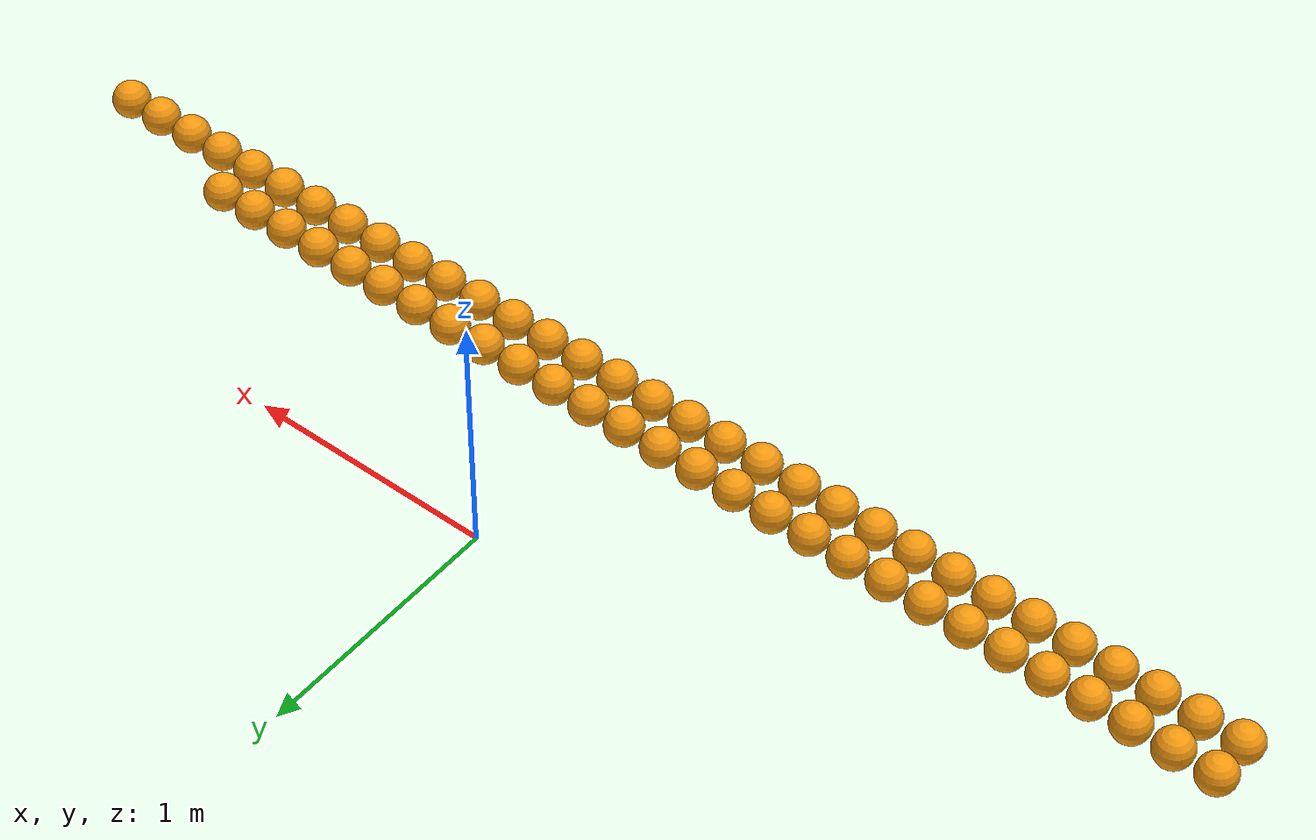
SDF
<?xml version="1.0" ?>
<sdf version="1.11">
  <world name="mars">
    <physics name="250hz" type="ignored">
      <max_step_size>0.004</max_step_size><real_time_factor>0</real_time_factor>
    </physics>
    <plugin filename="gz-sim-physics-system" name="gz::sim::systems::Physics"/>
    <plugin filename="gz-sim-scene-broadcaster-system" name="gz::sim::systems::SceneBroadcaster"/>
    <gravity>0 0 -9.8</gravity>
    <light type="directional" name="sun"><pose>0 0 10 0 0 0</pose>
      <diffuse>0.8 0.8 0.8 1</diffuse><direction>-0.5 0.1 -0.9</direction></light>
    <model name="ground_plane"><static>true</static><link name="link">
      <collision name="collision"><geometry><plane><normal>0 0 1</normal></plane></geometry>
      <surface><friction><ode><mu>0.9</mu><mu2>0.9</mu2></ode></friction></surface></collision>
    </link></model>
    <include><uri>model://fuel</uri><name>fuel_0</name><pose>-2.5340 -0.8340 0.0750 0 0 0</pose></include>
    <include><uri>model://fuel</uri><name>fuel_1</name><pose>-2.3720 -0.8340 0.0750 0 0 0</pose></include>
    <include><uri>model://fuel</uri><name>fuel_2</name><pose>-2.2100 -0.8340 0.0750 0 0 0</pose></include>
    <include><uri>model://fuel</uri><name>fuel_3</name><pose>-2.0480 -0.8340 0.0750 0 0 0</pose></include>
    <include><uri>model://fuel</uri><name>fuel_4</name><pose>-1.8860 -0.8340 0.0750 0 0 0</pose></include>
    <include><uri>model://fuel</uri><name>fuel_5</name><pose>-1.7240 -0.8340 0.0750 0 0 0</pose></include>
    <include><uri>model://fuel</uri><name>fuel_6</name><pose>-1.5620 -0.8340 0.0750 0 0 0</pose></include>
    <include><uri>model://fuel</uri><name>fuel_7</name><pose>-1.4000 -0.8340 0.0750 0 0 0</pose></include>
    <include><uri>model://fuel</uri><name>fuel_8</name><pose>-1.2380 -0.8340 0.0750 0 0 0</pose></include>
    <include><uri>model://fuel</uri><name>fuel_9</name><pose>-1.0760 -0.8340 0.0750 0 0 0</pose></include>
    <include><uri>model://fuel</uri><name>fuel_10</name><pose>-0.9140 -0.8340 0.0750 0 0 0</pose></include>
    <include><uri>model://fuel</uri><name>fuel_11</name><pose>-0.7520 -0.8340 0.0750 0 0 0</pose></include>
    <include><uri>model://fuel</uri><name>fuel_12</name><pose>-0.5900 -0.8340 0.0750 0 0 0</pose></include>
    <include><uri>model://fuel</uri><name>fuel_13</name><pose>-0.4280 -0.8340 0.0750 0 0 0</pose></include>
    <include><uri>model://fuel</uri><name>fuel_14</name><pose>-0.2660 -0.8340 0.0750 0 0 0</pose></include>
    <include><uri>model://fuel</uri><name>fuel_15</name><pose>-0.1040 -0.8340 0.0750 0 0 0</pose></include>
    <include><uri>model://fuel</uri><name>fuel_16</name><pose>0.0580 -0.8340 0.0750 0 0 0</pose></include>
    <include><uri>model://fuel</uri><name>fuel_17</name><pose>0.2200 -0.8340 0.0750 0 0 0</pose></include>
    <include><uri>model://fuel</uri><name>fuel_18</name><pose>0.3820 -0.8340 0.0750 0 0 0</pose></include>
    <include><uri>model://fuel</uri><name>fuel_19</name><pose>0.5440 -0.8340 0.0750 0 0 0</pose></include>
    <include><uri>model://fuel</uri><name>fuel_20</name><pose>0.7060 -0.8340 0.0750 0 0 0</pose></include>
    <include><uri>model://fuel</uri><name>fuel_21</name><pose>0.8680 -0.8340 0.0750 0 0 0</pose></include>
    <include><uri>model://fuel</uri><name>fuel_22</name><pose>1.0300 -0.8340 0.0750 0 0 0</pose></include>
    <include><uri>model://fuel</uri><name>fuel_23</name><pose>1.1920 -0.8340 0.0750 0 0 0</pose></include>
    <include><uri>model://fuel</uri><name>fuel_24</name><pose>1.3540 -0.8340 0.0750 0 0 0</pose></include>
    <include><uri>model://fuel</uri><name>fuel_25</name><pose>1.5160 -0.8340 0.0750 0 0 0</pose></include>
    <include><uri>model://fuel</uri><name>fuel_26</name><pose>1.6780 -0.8340 0.0750 0 0 0</pose></include>
    <include><uri>model://fuel</uri><name>fuel_27</name><pose>1.8400 -0.8340 0.0750 0 0 0</pose></include>
    <include><uri>model://fuel</uri><name>fuel_28</name><pose>2.0020 -0.8340 0.0750 0 0 0</pose></include>
    <include><uri>model://fuel</uri><name>fuel_29</name><pose>2.1640 -0.8340 0.0750 0 0 0</pose></include>
    <include><uri>model://fuel</uri><name>fuel_30</name><pose>2.3260 -0.8340 0.0750 0 0 0</pose></include>
    <include><uri>model://fuel</uri><name>fuel_31</name><pose>2.4880 -0.8340 0.0750 0 0 0</pose></include>
    <include><uri>model://fuel</uri><name>fuel_32</name><pose>-2.5340 -0.6720 0.0750 0 0 0</pose></include>
    <include><uri>model://fuel</uri><name>fuel_33</name><pose>-2.3720 -0.6720 0.0750 0 0 0</pose></include>
    <include><uri>model://fuel</uri><name>fuel_34</name><pose>-2.2100 -0.6720 0.0750 0 0 0</pose></include>
    <include><uri>model://fuel</uri><name>fuel_35</name><pose>-2.0480 -0.6720 0.0750 0 0 0</pose></include>
    <include><uri>model://fuel</uri><name>fuel_36</name><pose>-1.8860 -0.6720 0.0750 0 0 0</pose></include>
    <include><uri>model://fuel</uri><name>fuel_37</name><pose>-1.7240 -0.6720 0.0750 0 0 0</pose></include>
    <include><uri>model://fuel</uri><name>fuel_38</name><pose>-1.5620 -0.6720 0.0750 0 0 0</pose></include>
    <include><uri>model://fuel</uri><name>fuel_39</name><pose>-1.4000 -0.6720 0.0750 0 0 0</pose></include>
    <include><uri>model://fuel</uri><name>fuel_40</name><pose>-1.2380 -0.6720 0.0750 0 0 0</pose></include>
    <include><uri>model://fuel</uri><name>fuel_41</name><pose>-1.0760 -0.6720 0.0750 0 0 0</pose></include>
    <include><uri>model://fuel</uri><name>fuel_42</name><pose>-0.9140 -0.6720 0.0750 0 0 0</pose></include>
    <include><uri>model://fuel</uri><name>fuel_43</name><pose>-0.7520 -0.6720 0.0750 0 0 0</pose></include>
    <include><uri>model://fuel</uri><name>fuel_44</name><pose>-0.5900 -0.6720 0.0750 0 0 0</pose></include>
    <include><uri>model://fuel</uri><name>fuel_45</name><pose>-0.4280 -0.6720 0.0750 0 0 0</pose></include>
    <include><uri>model://fuel</uri><name>fuel_46</name><pose>-0.2660 -0.6720 0.0750 0 0 0</pose></include>
    <include><uri>model://fuel</uri><name>fuel_47</name><pose>-0.1040 -0.6720 0.0750 0 0 0</pose></include>
    <include><uri>model://fuel</uri><name>fuel_48</name><pose>0.0580 -0.6720 0.0750 0 0 0</pose></include>
    <include><uri>model://fuel</uri><name>fuel_49</name><pose>0.2200 -0.6720 0.0750 0 0 0</pose></include>
    <include><uri>model://fuel</uri><name>fuel_50</name><pose>0.3820 -0.6720 0.0750 0 0 0</pose></include>
    <include><uri>model://fuel</uri><name>fuel_51</name><pose>0.5440 -0.6720 0.0750 0 0 0</pose></include>
    <include><uri>model://fuel</uri><name>fuel_52</name><pose>0.7060 -0.6720 0.0750 0 0 0</pose></include>
    <include><uri>model://fuel</uri><name>fuel_53</name><pose>0.8680 -0.6720 0.0750 0 0 0</pose></include>
    <include><uri>model://fuel</uri><name>fuel_54</name><pose>1.0300 -0.6720 0.0750 0 0 0</pose></include>
    <include><uri>model://fuel</uri><name>fuel_55</name><pose>1.1920 -0.6720 0.0750 0 0 0</pose></include>
    <include><uri>model://fuel</uri><name>fuel_56</name><pose>1.3540 -0.6720 0.0750 0 0 0</pose></include>
    <include><uri>model://fuel</uri><name>fuel_57</name><pose>1.5160 -0.6720 0.0750 0 0 0</pose></include>
    <include><uri>model://fuel</uri><name>fuel_58</name><pose>1.6780 -0.6720 0.0750 0 0 0</pose></include>
    <include><uri>model://fuel</uri><name>fuel_59</name><pose>1.8400 -0.6720 0.0750 0 0 0</pose></include>
  </world>
</sdf>

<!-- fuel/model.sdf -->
<sdf version="1.11">
  <model name="fuel">
    <link name="link">

      <inertial>
        <mass>0.215</mass>
        <inertia>
          <ixx>4.8375e-4</ixx><ixy>0</ixy><ixz>0</ixz>
          <iyy>4.8375e-4</iyy><iyz>0</iyz>
          <izz>4.8375e-4</izz>
        </inertia>
      </inertial>

      <collision name="collision">
        <geometry><sphere><radius>0.075</radius></sphere></geometry>
        <surface>
          <friction>
            <ode>
              <mu>0.85</mu>
              <mu2>0.85</mu2>
            </ode>
          </friction>
        </surface>
      </collision>

      <visual name="visual">
        <geometry><sphere><radius>0.075</radius></sphere></geometry>
        <material>
          <ambient>0.38 0.24 0.02 1</ambient>
          <diffuse>0.956 0.597 0.056 1</diffuse>
          <specular>0.05 0.05 0.05 1</specular>
        </material>
      </visual>

    </link>
  </model>
</sdf>
